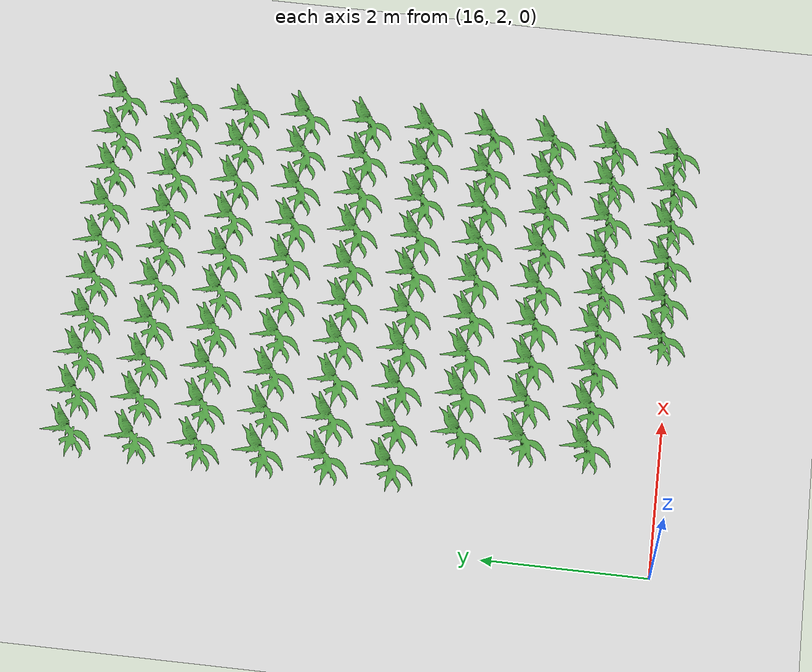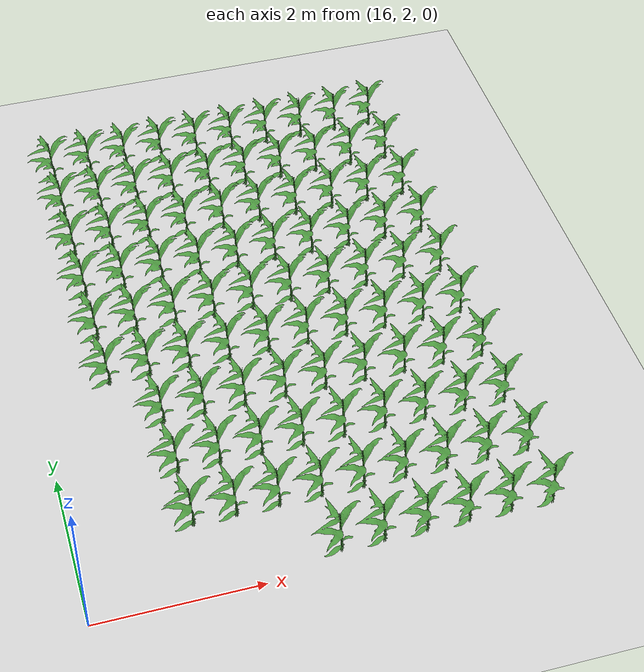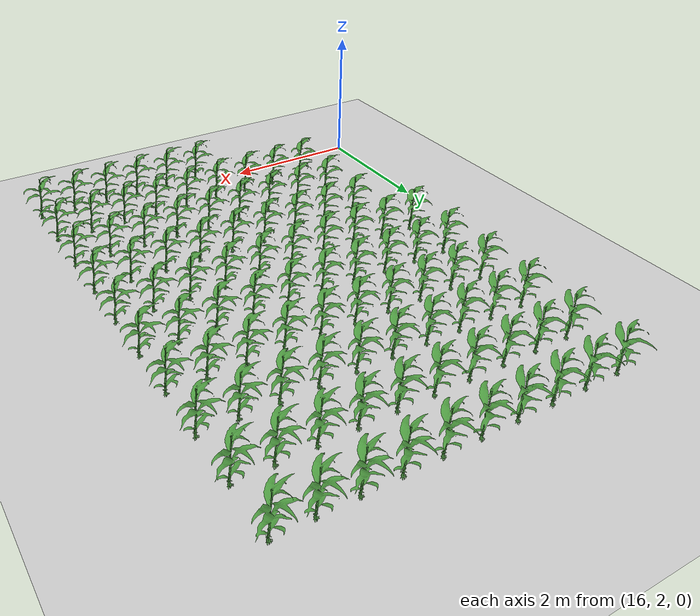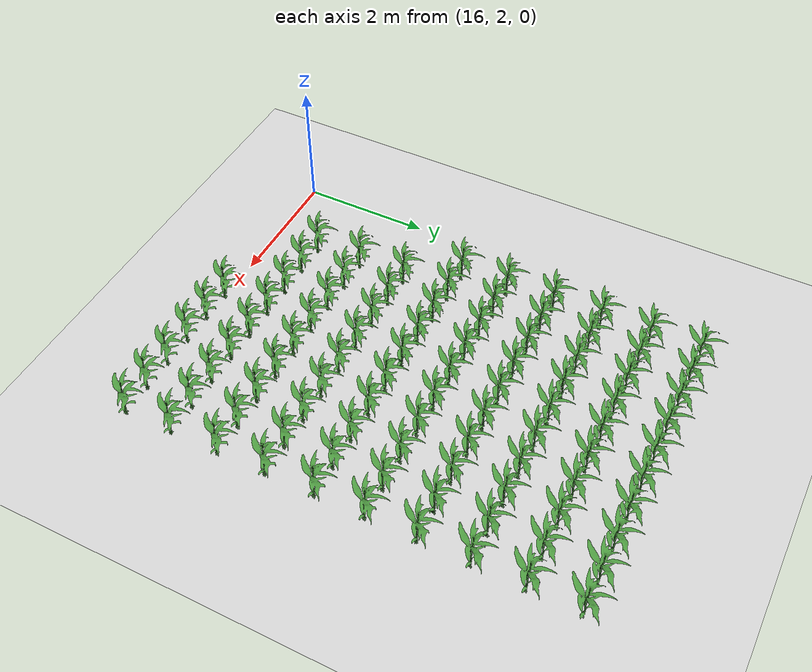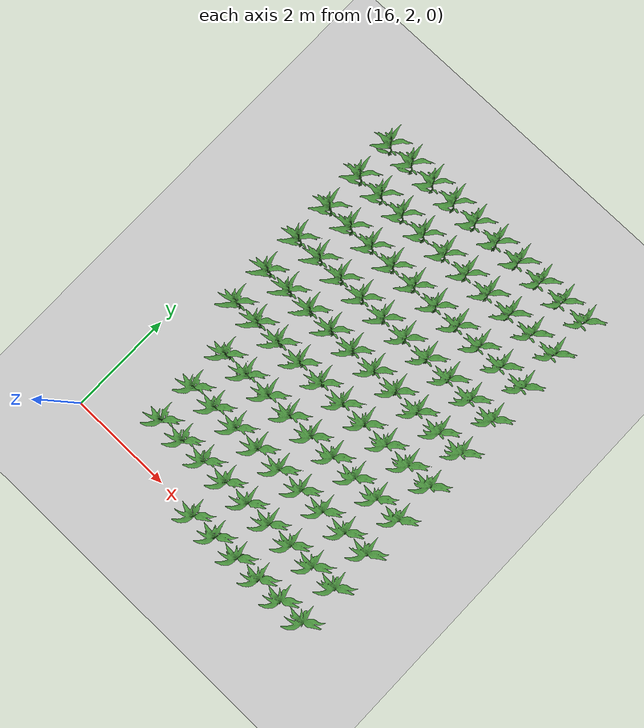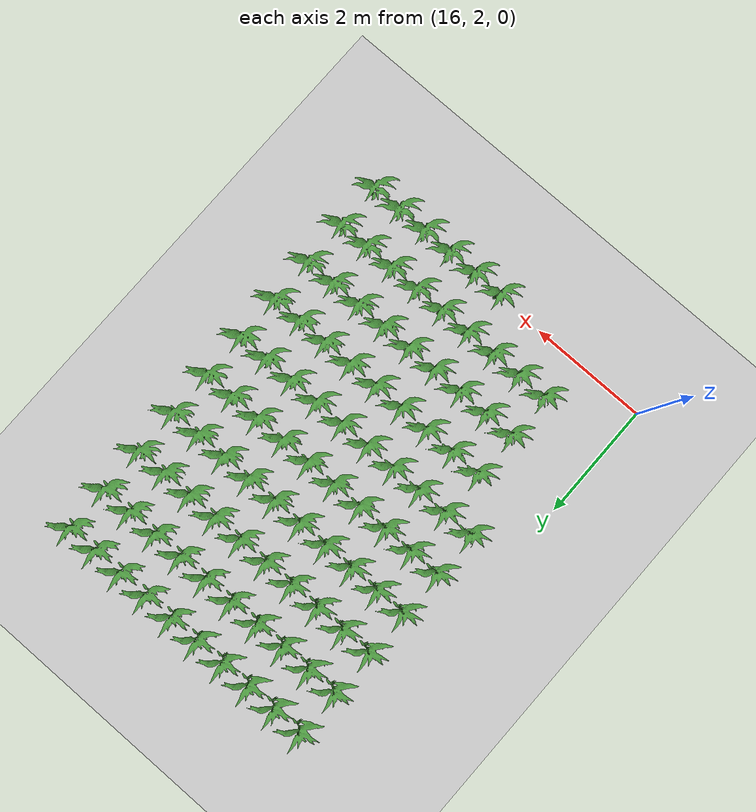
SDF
<sdf version="1.7">
 <world name="default">
  <model name="ground_plane">
   <static>1</static>
   <link name="link">
    <collision name="collision">
     <geometry><plane><normal>0 0 1</normal><size>100 100</size></plane></geometry>
     <surface>
      <contact><collide_bitmask>65535</collide_bitmask></contact>
      <friction><ode><mu>100</mu><mu2>50</mu2></ode></friction>
     </surface>
    </collision>
    <visual name="visual">
     <cast_shadows>0</cast_shadows>
     <geometry><plane><normal>0 0 1</normal><size>100 100</size></plane></geometry>
     <material>
      <script><uri>file://media/materials/scripts/gazebo.material</uri><name>Gazebo/Grey</name></script>
     </material>
    </visual>
   </link>
  </model>
  <model name="bush_1_nc_194">
   <static>1</static>
   <link name="link">
    <visual name="visual">
     <geometry>
      <mesh><uri>model://corn_stalk/meshes/corn_1.obj</uri><scale>0.002 0.002 0.001</scale></mesh>
     </geometry>
     <material>
      <script><uri>file://media/materials/scripts/gazebo.material</uri><name>Gazebo/Grass</name></script>
     </material>
    </visual>
   </link>
   <pose>17.0 3.81 0.171977 0 -0 0</pose>
  </model>
  <model name="bush_1_nc_195">
   <static>1</static>
   <link name="link">
    <visual name="visual">
     <geometry>
      <mesh><uri>model://corn_stalk/meshes/corn_1.obj</uri><scale>0.002 0.002 0.001</scale></mesh>
     </geometry>
     <material>
      <script><uri>file://media/materials/scripts/gazebo.material</uri><name>Gazebo/Grass</name></script>
     </material>
    </visual>
   </link>
   <pose>17.5 3.81 0.171977 0 -0 0</pose>
  </model>
  <model name="bush_1_nc_196">
   <static>1</static>
   <link name="link">
    <visual name="visual">
     <geometry>
      <mesh><uri>model://corn_stalk/meshes/corn_1.obj</uri><scale>0.002 0.002 0.001</scale></mesh>
     </geometry>
     <material>
      <script><uri>file://media/materials/scripts/gazebo.material</uri><name>Gazebo/Grass</name></script>
     </material>
    </visual>
   </link>
   <pose>18.0 3.81 0.171977 0 -0 0</pose>
  </model>
  <model name="bush_1_nc_197">
   <static>1</static>
   <link name="link">
    <visual name="visual">
     <geometry>
      <mesh><uri>model://corn_stalk/meshes/corn_1.obj</uri><scale>0.002 0.002 0.001</scale></mesh>
     </geometry>
     <material>
      <script><uri>file://media/materials/scripts/gazebo.material</uri><name>Gazebo/Grass</name></script>
     </material>
    </visual>
   </link>
   <pose>18.5 3.81 0.171977 0 -0 0</pose>
  </model>
  <model name="bush_1_nc_198">
   <static>1</static>
   <link name="link">
    <visual name="visual">
     <geometry>
      <mesh><uri>model://corn_stalk/meshes/corn_1.obj</uri><scale>0.002 0.002 0.001</scale></mesh>
     </geometry>
     <material>
      <script><uri>file://media/materials/scripts/gazebo.material</uri><name>Gazebo/Grass</name></script>
     </material>
    </visual>
   </link>
   <pose>19.0 3.81 0.171977 0 -0 0</pose>
  </model>
  <model name="bush_1_nc_199">
   <static>1</static>
   <link name="link">
    <visual name="visual">
     <geometry>
      <mesh><uri>model://corn_stalk/meshes/corn_1.obj</uri><scale>0.002 0.002 0.001</scale></mesh>
     </geometry>
     <material>
      <script><uri>file://media/materials/scripts/gazebo.material</uri><name>Gazebo/Grass</name></script>
     </material>
    </visual>
   </link>
   <pose>19.5 3.81 0.171977 0 -0 0</pose>
  </model>
  <model name="bush_1_nc_231">
   <static>1</static>
   <link name="link">
    <visual name="visual">
     <geometry>
      <mesh><uri>model://corn_stalk/meshes/corn_1.obj</uri><scale>0.002 0.002 0.001</scale></mesh>
     </geometry>
     <material>
      <script><uri>file://media/materials/scripts/gazebo.material</uri><name>Gazebo/Grass</name></script>
     </material>
    </visual>
   </link>
   <pose>15.5 4.572 0.171977 0 -0 0</pose>
  </model>
  <model name="bush_1_nc_232">
   <static>1</static>
   <link name="link">
    <visual name="visual">
     <geometry>
      <mesh><uri>model://corn_stalk/meshes/corn_1.obj</uri><scale>0.002 0.002 0.001</scale></mesh>
     </geometry>
     <material>
      <script><uri>file://media/materials/scripts/gazebo.material</uri><name>Gazebo/Grass</name></script>
     </material>
    </visual>
   </link>
   <pose>16.0 4.572 0.171977 0 -0 0</pose>
  </model>
  <model name="bush_1_nc_233">
   <static>1</static>
   <link name="link">
    <visual name="visual">
     <geometry>
      <mesh><uri>model://corn_stalk/meshes/corn_1.obj</uri><scale>0.002 0.002 0.001</scale></mesh>
     </geometry>
     <material>
      <script><uri>file://media/materials/scripts/gazebo.material</uri><name>Gazebo/Grass</name></script>
     </material>
    </visual>
   </link>
   <pose>16.5 4.572 0.171977 0 -0 0</pose>
  </model>
  <model name="bush_1_nc_234">
   <static>1</static>
   <link name="link">
    <visual name="visual">
     <geometry>
      <mesh><uri>model://corn_stalk/meshes/corn_1.obj</uri><scale>0.002 0.002 0.001</scale></mesh>
     </geometry>
     <material>
      <script><uri>file://media/materials/scripts/gazebo.material</uri><name>Gazebo/Grass</name></script>
     </material>
    </visual>
   </link>
   <pose>17.0 4.572 0.171977 0 -0 0</pose>
  </model>
  <model name="bush_1_nc_235">
   <static>1</static>
   <link name="link">
    <visual name="visual">
     <geometry>
      <mesh><uri>model://corn_stalk/meshes/corn_1.obj</uri><scale>0.002 0.002 0.001</scale></mesh>
     </geometry>
     <material>
      <script><uri>file://media/materials/scripts/gazebo.material</uri><name>Gazebo/Grass</name></script>
     </material>
    </visual>
   </link>
   <pose>17.5 4.572 0.171977 0 -0 0</pose>
  </model>
  <model name="bush_1_nc_236">
   <static>1</static>
   <link name="link">
    <visual name="visual">
     <geometry>
      <mesh><uri>model://corn_stalk/meshes/corn_1.obj</uri><scale>0.002 0.002 0.001</scale></mesh>
     </geometry>
     <material>
      <script><uri>file://media/materials/scripts/gazebo.material</uri><name>Gazebo/Grass</name></script>
     </material>
    </visual>
   </link>
   <pose>18.0 4.572 0.171977 0 -0 0</pose>
  </model>
  <model name="bush_1_nc_237">
   <static>1</static>
   <link name="link">
    <visual name="visual">
     <geometry>
      <mesh><uri>model://corn_stalk/meshes/corn_1.obj</uri><scale>0.002 0.002 0.001</scale></mesh>
     </geometry>
     <material>
      <script><uri>file://media/materials/scripts/gazebo.material</uri><name>Gazebo/Grass</name></script>
     </material>
    </visual>
   </link>
   <pose>18.5 4.572 0.171977 0 -0 0</pose>
  </model>
  <model name="bush_1_nc_238">
   <static>1</static>
   <link name="link">
    <visual name="visual">
     <geometry>
      <mesh><uri>model://corn_stalk/meshes/corn_1.obj</uri><scale>0.002 0.002 0.001</scale></mesh>
     </geometry>
     <material>
      <script><uri>file://media/materials/scripts/gazebo.material</uri><name>Gazebo/Grass</name></script>
     </material>
    </visual>
   </link>
   <pose>19.0 4.572 0.171977 0 -0 0</pose>
  </model>
  <model name="bush_1_nc_239">
   <static>1</static>
   <link name="link">
    <visual name="visual">
     <geometry>
      <mesh><uri>model://corn_stalk/meshes/corn_1.obj</uri><scale>0.002 0.002 0.001</scale></mesh>
     </geometry>
     <material>
      <script><uri>file://media/materials/scripts/gazebo.material</uri><name>Gazebo/Grass</name></script>
     </material>
    </visual>
   </link>
   <pose>19.5 4.572 0.171977 0 -0 0</pose>
  </model>
  <model name="bush_1_nc_271">
   <static>1</static>
   <link name="link">
    <visual name="visual">
     <geometry>
      <mesh><uri>model://corn_stalk/meshes/corn_1.obj</uri><scale>0.002 0.002 0.001</scale></mesh>
     </geometry>
     <material>
      <script><uri>file://media/materials/scripts/gazebo.material</uri><name>Gazebo/Grass</name></script>
     </material>
    </visual>
   </link>
   <pose>15.5 5.334 0.171977 0 -0 0</pose>
  </model>
  <model name="bush_1_nc_272">
   <static>1</static>
   <link name="link">
    <visual name="visual">
     <geometry>
      <mesh><uri>model://corn_stalk/meshes/corn_1.obj</uri><scale>0.002 0.002 0.001</scale></mesh>
     </geometry>
     <material>
      <script><uri>file://media/materials/scripts/gazebo.material</uri><name>Gazebo/Grass</name></script>
     </material>
    </visual>
   </link>
   <pose>16.0 5.334 0.171977 0 -0 0</pose>
  </model>
  <model name="bush_1_nc_273">
   <static>1</static>
   <link name="link">
    <visual name="visual">
     <geometry>
      <mesh><uri>model://corn_stalk/meshes/corn_1.obj</uri><scale>0.002 0.002 0.001</scale></mesh>
     </geometry>
     <material>
      <script><uri>file://media/materials/scripts/gazebo.material</uri><name>Gazebo/Grass</name></script>
     </material>
    </visual>
   </link>
   <pose>16.5 5.334 0.171977 0 -0 0</pose>
  </model>
  <model name="bush_1_nc_274">
   <static>1</static>
   <link name="link">
    <visual name="visual">
     <geometry>
      <mesh><uri>model://corn_stalk/meshes/corn_1.obj</uri><scale>0.002 0.002 0.001</scale></mesh>
     </geometry>
     <material>
      <script><uri>file://media/materials/scripts/gazebo.material</uri><name>Gazebo/Grass</name></script>
     </material>
    </visual>
   </link>
   <pose>17.0 5.334 0.171977 0 -0 0</pose>
  </model>
  <model name="bush_1_nc_275">
   <static>1</static>
   <link name="link">
    <visual name="visual">
     <geometry>
      <mesh><uri>model://corn_stalk/meshes/corn_1.obj</uri><scale>0.002 0.002 0.001</scale></mesh>
     </geometry>
     <material>
      <script><uri>file://media/materials/scripts/gazebo.material</uri><name>Gazebo/Grass</name></script>
     </material>
    </visual>
   </link>
   <pose>17.5 5.334 0.171977 0 -0 0</pose>
  </model>
  <model name="bush_1_nc_276">
   <static>1</static>
   <link name="link">
    <visual name="visual">
     <geometry>
      <mesh><uri>model://corn_stalk/meshes/corn_1.obj</uri><scale>0.002 0.002 0.001</scale></mesh>
     </geometry>
     <material>
      <script><uri>file://media/materials/scripts/gazebo.material</uri><name>Gazebo/Grass</name></script>
     </material>
    </visual>
   </link>
   <pose>18.0 5.334 0.171977 0 -0 0</pose>
  </model>
  <model name="bush_1_nc_277">
   <static>1</static>
   <link name="link">
    <visual name="visual">
     <geometry>
      <mesh><uri>model://corn_stalk/meshes/corn_1.obj</uri><scale>0.002 0.002 0.001</scale></mesh>
     </geometry>
     <material>
      <script><uri>file://media/materials/scripts/gazebo.material</uri><name>Gazebo/Grass</name></script>
     </material>
    </visual>
   </link>
   <pose>18.5 5.334 0.171977 0 -0 0</pose>
  </model>
  <model name="bush_1_nc_278">
   <static>1</static>
   <link name="link">
    <visual name="visual">
     <geometry>
      <mesh><uri>model://corn_stalk/meshes/corn_1.obj</uri><scale>0.002 0.002 0.001</scale></mesh>
     </geometry>
     <material>
      <script><uri>file://media/materials/scripts/gazebo.material</uri><name>Gazebo/Grass</name></script>
     </material>
    </visual>
   </link>
   <pose>19.0 5.334 0.171977 0 -0 0</pose>
  </model>
  <model name="bush_1_nc_279">
   <static>1</static>
   <link name="link">
    <visual name="visual">
     <geometry>
      <mesh><uri>model://corn_stalk/meshes/corn_1.obj</uri><scale>0.002 0.002 0.001</scale></mesh>
     </geometry>
     <material>
      <script><uri>file://media/materials/scripts/gazebo.material</uri><name>Gazebo/Grass</name></script>
     </material>
    </visual>
   </link>
   <pose>19.5 5.334 0.171977 0 -0 0</pose>
  </model>
  <model name="bush_1_nc_311">
   <static>1</static>
   <link name="link">
    <visual name="visual">
     <geometry>
      <mesh><uri>model://corn_stalk/meshes/corn_1.obj</uri><scale>0.002 0.002 0.001</scale></mesh>
     </geometry>
     <material>
      <script><uri>file://media/materials/scripts/gazebo.material</uri><name>Gazebo/Grass</name></script>
     </material>
    </visual>
   </link>
   <pose>15.5 6.096 0.171977 0 -0 0</pose>
  </model>
  <model name="bush_1_nc_312">
   <static>1</static>
   <link name="link">
    <visual name="visual">
     <geometry>
      <mesh><uri>model://corn_stalk/meshes/corn_1.obj</uri><scale>0.002 0.002 0.001</scale></mesh>
     </geometry>
     <material>
      <script><uri>file://media/materials/scripts/gazebo.material</uri><name>Gazebo/Grass</name></script>
     </material>
    </visual>
   </link>
   <pose>16.0 6.096 0.171977 0 -0 0</pose>
  </model>
  <model name="bush_1_nc_313">
   <static>1</static>
   <link name="link">
    <visual name="visual">
     <geometry>
      <mesh><uri>model://corn_stalk/meshes/corn_1.obj</uri><scale>0.002 0.002 0.001</scale></mesh>
     </geometry>
     <material>
      <script><uri>file://media/materials/scripts/gazebo.material</uri><name>Gazebo/Grass</name></script>
     </material>
    </visual>
   </link>
   <pose>16.5 6.096 0.171977 0 -0 0</pose>
  </model>
  <model name="bush_1_nc_314">
   <static>1</static>
   <link name="link">
    <visual name="visual">
     <geometry>
      <mesh><uri>model://corn_stalk/meshes/corn_1.obj</uri><scale>0.002 0.002 0.001</scale></mesh>
     </geometry>
     <material>
      <script><uri>file://media/materials/scripts/gazebo.material</uri><name>Gazebo/Grass</name></script>
     </material>
    </visual>
   </link>
   <pose>17.0 6.096 0.171977 0 -0 0</pose>
  </model>
  <model name="bush_1_nc_315">
   <static>1</static>
   <link name="link">
    <visual name="visual">
     <geometry>
      <mesh><uri>model://corn_stalk/meshes/corn_1.obj</uri><scale>0.002 0.002 0.001</scale></mesh>
     </geometry>
     <material>
      <script><uri>file://media/materials/scripts/gazebo.material</uri><name>Gazebo/Grass</name></script>
     </material>
    </visual>
   </link>
   <pose>17.5 6.096 0.171977 0 -0 0</pose>
  </model>
  <model name="bush_1_nc_316">
   <static>1</static>
   <link name="link">
    <visual name="visual">
     <geometry>
      <mesh><uri>model://corn_stalk/meshes/corn_1.obj</uri><scale>0.002 0.002 0.001</scale></mesh>
     </geometry>
     <material>
      <script><uri>file://media/materials/scripts/gazebo.material</uri><name>Gazebo/Grass</name></script>
     </material>
    </visual>
   </link>
   <pose>18.0 6.096 0.171977 0 -0 0</pose>
  </model>
  <model name="bush_1_nc_317">
   <static>1</static>
   <link name="link">
    <visual name="visual">
     <geometry>
      <mesh><uri>model://corn_stalk/meshes/corn_1.obj</uri><scale>0.002 0.002 0.001</scale></mesh>
     </geometry>
     <material>
      <script><uri>file://media/materials/scripts/gazebo.material</uri><name>Gazebo/Grass</name></script>
     </material>
    </visual>
   </link>
   <pose>18.5 6.096 0.171977 0 -0 0</pose>
  </model>
  <model name="bush_1_nc_318">
   <static>1</static>
   <link name="link">
    <visual name="visual">
     <geometry>
      <mesh><uri>model://corn_stalk/meshes/corn_1.obj</uri><scale>0.002 0.002 0.001</scale></mesh>
     </geometry>
     <material>
      <script><uri>file://media/materials/scripts/gazebo.material</uri><name>Gazebo/Grass</name></script>
     </material>
    </visual>
   </link>
   <pose>19.0 6.096 0.171977 0 -0 0</pose>
  </model>
  <model name="bush_1_nc_319">
   <static>1</static>
   <link name="link">
    <visual name="visual">
     <geometry>
      <mesh><uri>model://corn_stalk/meshes/corn_1.obj</uri><scale>0.002 0.002 0.001</scale></mesh>
     </geometry>
     <material>
      <script><uri>file://media/materials/scripts/gazebo.material</uri><name>Gazebo/Grass</name></script>
     </material>
    </visual>
   </link>
   <pose>19.5 6.096 0.171977 0 -0 0</pose>
  </model>
  <model name="bush_1_nc_350">
   <static>1</static>
   <link name="link">
    <visual name="visual">
     <geometry>
      <mesh><uri>model://corn_stalk/meshes/corn_1.obj</uri><scale>0.002 0.002 0.001</scale></mesh>
     </geometry>
     <material>
      <script><uri>file://media/materials/scripts/gazebo.material</uri><name>Gazebo/Grass</name></script>
     </material>
    </visual>
   </link>
   <pose>15.0 6.8580000000000005 0.171977 0 -0 0</pose>
  </model>
  <model name="bush_1_nc_351">
   <static>1</static>
   <link name="link">
    <visual name="visual">
     <geometry>
      <mesh><uri>model://corn_stalk/meshes/corn_1.obj</uri><scale>0.002 0.002 0.001</scale></mesh>
     </geometry>
     <material>
      <script><uri>file://media/materials/scripts/gazebo.material</uri><name>Gazebo/Grass</name></script>
     </material>
    </visual>
   </link>
   <pose>15.5 6.8580000000000005 0.171977 0 -0 0</pose>
  </model>
  <model name="bush_1_nc_352">
   <static>1</static>
   <link name="link">
    <visual name="visual">
     <geometry>
      <mesh><uri>model://corn_stalk/meshes/corn_1.obj</uri><scale>0.002 0.002 0.001</scale></mesh>
     </geometry>
     <material>
      <script><uri>file://media/materials/scripts/gazebo.material</uri><name>Gazebo/Grass</name></script>
     </material>
    </visual>
   </link>
   <pose>16.0 6.8580000000000005 0.171977 0 -0 0</pose>
  </model>
  <model name="bush_1_nc_353">
   <static>1</static>
   <link name="link">
    <visual name="visual">
     <geometry>
      <mesh><uri>model://corn_stalk/meshes/corn_1.obj</uri><scale>0.002 0.002 0.001</scale></mesh>
     </geometry>
     <material>
      <script><uri>file://media/materials/scripts/gazebo.material</uri><name>Gazebo/Grass</name></script>
     </material>
    </visual>
   </link>
   <pose>16.5 6.8580000000000005 0.171977 0 -0 0</pose>
  </model>
  <model name="bush_1_nc_354">
   <static>1</static>
   <link name="link">
    <visual name="visual">
     <geometry>
      <mesh><uri>model://corn_stalk/meshes/corn_1.obj</uri><scale>0.002 0.002 0.001</scale></mesh>
     </geometry>
     <material>
      <script><uri>file://media/materials/scripts/gazebo.material</uri><name>Gazebo/Grass</name></script>
     </material>
    </visual>
   </link>
   <pose>17.0 6.8580000000000005 0.171977 0 -0 0</pose>
  </model>
  <model name="bush_1_nc_355">
   <static>1</static>
   <link name="link">
    <visual name="visual">
     <geometry>
      <mesh><uri>model://corn_stalk/meshes/corn_1.obj</uri><scale>0.002 0.002 0.001</scale></mesh>
     </geometry>
     <material>
      <script><uri>file://media/materials/scripts/gazebo.material</uri><name>Gazebo/Grass</name></script>
     </material>
    </visual>
   </link>
   <pose>17.5 6.8580000000000005 0.171977 0 -0 0</pose>
  </model>
  <model name="bush_1_nc_356">
   <static>1</static>
   <link name="link">
    <visual name="visual">
     <geometry>
      <mesh><uri>model://corn_stalk/meshes/corn_1.obj</uri><scale>0.002 0.002 0.001</scale></mesh>
     </geometry>
     <material>
      <script><uri>file://media/materials/scripts/gazebo.material</uri><name>Gazebo/Grass</name></script>
     </material>
    </visual>
   </link>
   <pose>18.0 6.8580000000000005 0.171977 0 -0 0</pose>
  </model>
  <model name="bush_1_nc_357">
   <static>1</static>
   <link name="link">
    <visual name="visual">
     <geometry>
      <mesh><uri>model://corn_stalk/meshes/corn_1.obj</uri><scale>0.002 0.002 0.001</scale></mesh>
     </geometry>
     <material>
      <script><uri>file://media/materials/scripts/gazebo.material</uri><name>Gazebo/Grass</name></script>
     </material>
    </visual>
   </link>
   <pose>18.5 6.8580000000000005 0.171977 0 -0 0</pose>
  </model>
  <model name="bush_1_nc_358">
   <static>1</static>
   <link name="link">
    <visual name="visual">
     <geometry>
      <mesh><uri>model://corn_stalk/meshes/corn_1.obj</uri><scale>0.002 0.002 0.001</scale></mesh>
     </geometry>
     <material>
      <script><uri>file://media/materials/scripts/gazebo.material</uri><name>Gazebo/Grass</name></script>
     </material>
    </visual>
   </link>
   <pose>19.0 6.8580000000000005 0.171977 0 -0 0</pose>
  </model>
  <model name="bush_1_nc_359">
   <static>1</static>
   <link name="link">
    <visual name="visual">
     <geometry>
      <mesh><uri>model://corn_stalk/meshes/corn_1.obj</uri><scale>0.002 0.002 0.001</scale></mesh>
     </geometry>
     <material>
      <script><uri>file://media/materials/scripts/gazebo.material</uri><name>Gazebo/Grass</name></script>
     </material>
    </visual>
   </link>
   <pose>19.5 6.8580000000000005 0.171977 0 -0 0</pose>
  </model>
  <model name="bush_1_nc_390">
   <static>1</static>
   <link name="link">
    <visual name="visual">
     <geometry>
      <mesh><uri>model://corn_stalk/meshes/corn_1.obj</uri><scale>0.002 0.002 0.001</scale></mesh>
     </geometry>
     <material>
      <script><uri>file://media/materials/scripts/gazebo.material</uri><name>Gazebo/Grass</name></script>
     </material>
    </visual>
   </link>
   <pose>15.0 7.62 0.171977 0 -0 0</pose>
  </model>
  <model name="bush_1_nc_391">
   <static>1</static>
   <link name="link">
    <visual name="visual">
     <geometry>
      <mesh><uri>model://corn_stalk/meshes/corn_1.obj</uri><scale>0.002 0.002 0.001</scale></mesh>
     </geometry>
     <material>
      <script><uri>file://media/materials/scripts/gazebo.material</uri><name>Gazebo/Grass</name></script>
     </material>
    </visual>
   </link>
   <pose>15.5 7.62 0.171977 0 -0 0</pose>
  </model>
  <model name="bush_1_nc_392">
   <static>1</static>
   <link name="link">
    <visual name="visual">
     <geometry>
      <mesh><uri>model://corn_stalk/meshes/corn_1.obj</uri><scale>0.002 0.002 0.001</scale></mesh>
     </geometry>
     <material>
      <script><uri>file://media/materials/scripts/gazebo.material</uri><name>Gazebo/Grass</name></script>
     </material>
    </visual>
   </link>
   <pose>16.0 7.62 0.171977 0 -0 0</pose>
  </model>
  <model name="bush_1_nc_393">
   <static>1</static>
   <link name="link">
    <visual name="visual">
     <geometry>
      <mesh><uri>model://corn_stalk/meshes/corn_1.obj</uri><scale>0.002 0.002 0.001</scale></mesh>
     </geometry>
     <material>
      <script><uri>file://media/materials/scripts/gazebo.material</uri><name>Gazebo/Grass</name></script>
     </material>
    </visual>
   </link>
   <pose>16.5 7.62 0.171977 0 -0 0</pose>
  </model>
  <model name="bush_1_nc_394">
   <static>1</static>
   <link name="link">
    <visual name="visual">
     <geometry>
      <mesh><uri>model://corn_stalk/meshes/corn_1.obj</uri><scale>0.002 0.002 0.001</scale></mesh>
     </geometry>
     <material>
      <script><uri>file://media/materials/scripts/gazebo.material</uri><name>Gazebo/Grass</name></script>
     </material>
    </visual>
   </link>
   <pose>17.0 7.62 0.171977 0 -0 0</pose>
  </model>
  <model name="bush_1_nc_395">
   <static>1</static>
   <link name="link">
    <visual name="visual">
     <geometry>
      <mesh><uri>model://corn_stalk/meshes/corn_1.obj</uri><scale>0.002 0.002 0.001</scale></mesh>
     </geometry>
     <material>
      <script><uri>file://media/materials/scripts/gazebo.material</uri><name>Gazebo/Grass</name></script>
     </material>
    </visual>
   </link>
   <pose>17.5 7.62 0.171977 0 -0 0</pose>
  </model>
  <model name="bush_1_nc_396">
   <static>1</static>
   <link name="link">
    <visual name="visual">
     <geometry>
      <mesh><uri>model://corn_stalk/meshes/corn_1.obj</uri><scale>0.002 0.002 0.001</scale></mesh>
     </geometry>
     <material>
      <script><uri>file://media/materials/scripts/gazebo.material</uri><name>Gazebo/Grass</name></script>
     </material>
    </visual>
   </link>
   <pose>18.0 7.62 0.171977 0 -0 0</pose>
  </model>
  <model name="bush_1_nc_397">
   <static>1</static>
   <link name="link">
    <visual name="visual">
     <geometry>
      <mesh><uri>model://corn_stalk/meshes/corn_1.obj</uri><scale>0.002 0.002 0.001</scale></mesh>
     </geometry>
     <material>
      <script><uri>file://media/materials/scripts/gazebo.material</uri><name>Gazebo/Grass</name></script>
     </material>
    </visual>
   </link>
   <pose>18.5 7.62 0.171977 0 -0 0</pose>
  </model>
  <model name="bush_1_nc_398">
   <static>1</static>
   <link name="link">
    <visual name="visual">
     <geometry>
      <mesh><uri>model://corn_stalk/meshes/corn_1.obj</uri><scale>0.002 0.002 0.001</scale></mesh>
     </geometry>
     <material>
      <script><uri>file://media/materials/scripts/gazebo.material</uri><name>Gazebo/Grass</name></script>
     </material>
    </visual>
   </link>
   <pose>19.0 7.62 0.171977 0 -0 0</pose>
  </model>
  <model name="bush_1_nc_399">
   <static>1</static>
   <link name="link">
    <visual name="visual">
     <geometry>
      <mesh><uri>model://corn_stalk/meshes/corn_1.obj</uri><scale>0.002 0.002 0.001</scale></mesh>
     </geometry>
     <material>
      <script><uri>file://media/materials/scripts/gazebo.material</uri><name>Gazebo/Grass</name></script>
     </material>
    </visual>
   </link>
   <pose>19.5 7.62 0.171977 0 -0 0</pose>
  </model>
  <model name="bush_1_nc_430">
   <static>1</static>
   <link name="link">
    <visual name="visual">
     <geometry>
      <mesh><uri>model://corn_stalk/meshes/corn_1.obj</uri><scale>0.002 0.002 0.001</scale></mesh>
     </geometry>
     <material>
      <script><uri>file://media/materials/scripts/gazebo.material</uri><name>Gazebo/Grass</name></script>
     </material>
    </visual>
   </link>
   <pose>15.0 8.382 0.171977 0 -0 0</pose>
  </model>
  <model name="bush_1_nc_431">
   <static>1</static>
   <link name="link">
    <visual name="visual">
     <geometry>
      <mesh><uri>model://corn_stalk/meshes/corn_1.obj</uri><scale>0.002 0.002 0.001</scale></mesh>
     </geometry>
     <material>
      <script><uri>file://media/materials/scripts/gazebo.material</uri><name>Gazebo/Grass</name></script>
     </material>
    </visual>
   </link>
   <pose>15.5 8.382 0.171977 0 -0 0</pose>
  </model>
  <model name="bush_1_nc_432">
   <static>1</static>
   <link name="link">
    <visual name="visual">
     <geometry>
      <mesh><uri>model://corn_stalk/meshes/corn_1.obj</uri><scale>0.002 0.002 0.001</scale></mesh>
     </geometry>
     <material>
      <script><uri>file://media/materials/scripts/gazebo.material</uri><name>Gazebo/Grass</name></script>
     </material>
    </visual>
   </link>
   <pose>16.0 8.382 0.171977 0 -0 0</pose>
  </model>
  <model name="bush_1_nc_433">
   <static>1</static>
   <link name="link">
    <visual name="visual">
     <geometry>
      <mesh><uri>model://corn_stalk/meshes/corn_1.obj</uri><scale>0.002 0.002 0.001</scale></mesh>
     </geometry>
     <material>
      <script><uri>file://media/materials/scripts/gazebo.material</uri><name>Gazebo/Grass</name></script>
     </material>
    </visual>
   </link>
   <pose>16.5 8.382 0.171977 0 -0 0</pose>
  </model>
  <model name="bush_1_nc_434">
   <static>1</static>
   <link name="link">
    <visual name="visual">
     <geometry>
      <mesh><uri>model://corn_stalk/meshes/corn_1.obj</uri><scale>0.002 0.002 0.001</scale></mesh>
     </geometry>
     <material>
      <script><uri>file://media/materials/scripts/gazebo.material</uri><name>Gazebo/Grass</name></script>
     </material>
    </visual>
   </link>
   <pose>17.0 8.382 0.171977 0 -0 0</pose>
  </model>
  <model name="bush_1_nc_435">
   <static>1</static>
   <link name="link">
    <visual name="visual">
     <geometry>
      <mesh><uri>model://corn_stalk/meshes/corn_1.obj</uri><scale>0.002 0.002 0.001</scale></mesh>
     </geometry>
     <material>
      <script><uri>file://media/materials/scripts/gazebo.material</uri><name>Gazebo/Grass</name></script>
     </material>
    </visual>
   </link>
   <pose>17.5 8.382 0.171977 0 -0 0</pose>
  </model>
  <model name="bush_1_nc_436">
   <static>1</static>
   <link name="link">
    <visual name="visual">
     <geometry>
      <mesh><uri>model://corn_stalk/meshes/corn_1.obj</uri><scale>0.002 0.002 0.001</scale></mesh>
     </geometry>
     <material>
      <script><uri>file://media/materials/scripts/gazebo.material</uri><name>Gazebo/Grass</name></script>
     </material>
    </visual>
   </link>
   <pose>18.0 8.382 0.171977 0 -0 0</pose>
  </model>
  <model name="bush_1_nc_437">
   <static>1</static>
   <link name="link">
    <visual name="visual">
     <geometry>
      <mesh><uri>model://corn_stalk/meshes/corn_1.obj</uri><scale>0.002 0.002 0.001</scale></mesh>
     </geometry>
     <material>
      <script><uri>file://media/materials/scripts/gazebo.material</uri><name>Gazebo/Grass</name></script>
     </material>
    </visual>
   </link>
   <pose>18.5 8.382 0.171977 0 -0 0</pose>
  </model>
  <model name="bush_1_nc_438">
   <static>1</static>
   <link name="link">
    <visual name="visual">
     <geometry>
      <mesh><uri>model://corn_stalk/meshes/corn_1.obj</uri><scale>0.002 0.002 0.001</scale></mesh>
     </geometry>
     <material>
      <script><uri>file://media/materials/scripts/gazebo.material</uri><name>Gazebo/Grass</name></script>
     </material>
    </visual>
   </link>
   <pose>19.0 8.382 0.171977 0 -0 0</pose>
  </model>
  <model name="bush_1_nc_439">
   <static>1</static>
   <link name="link">
    <visual name="visual">
     <geometry>
      <mesh><uri>model://corn_stalk/meshes/corn_1.obj</uri><scale>0.002 0.002 0.001</scale></mesh>
     </geometry>
     <material>
      <script><uri>file://media/materials/scripts/gazebo.material</uri><name>Gazebo/Grass</name></script>
     </material>
    </visual>
   </link>
   <pose>19.5 8.382 0.171977 0 -0 0</pose>
  </model>
  <model name="bush_1_nc_470">
   <static>1</static>
   <link name="link">
    <visual name="visual">
     <geometry>
      <mesh><uri>model://corn_stalk/meshes/corn_1.obj</uri><scale>0.002 0.002 0.001</scale></mesh>
     </geometry>
     <material>
      <script><uri>file://media/materials/scripts/gazebo.material</uri><name>Gazebo/Grass</name></script>
     </material>
    </visual>
   </link>
   <pose>15.0 9.144 0.171977 0 -0 0</pose>
  </model>
  <model name="bush_1_nc_471">
   <static>1</static>
   <link name="link">
    <visual name="visual">
     <geometry>
      <mesh><uri>model://corn_stalk/meshes/corn_1.obj</uri><scale>0.002 0.002 0.001</scale></mesh>
     </geometry>
     <material>
      <script><uri>file://media/materials/scripts/gazebo.material</uri><name>Gazebo/Grass</name></script>
     </material>
    </visual>
   </link>
   <pose>15.5 9.144 0.171977 0 -0 0</pose>
  </model>
  <model name="bush_1_nc_472">
   <static>1</static>
   <link name="link">
    <visual name="visual">
     <geometry>
      <mesh><uri>model://corn_stalk/meshes/corn_1.obj</uri><scale>0.002 0.002 0.001</scale></mesh>
     </geometry>
     <material>
      <script><uri>file://media/materials/scripts/gazebo.material</uri><name>Gazebo/Grass</name></script>
     </material>
    </visual>
   </link>
   <pose>16.0 9.144 0.171977 0 -0 0</pose>
  </model>
  <model name="bush_1_nc_473">
   <static>1</static>
   <link name="link">
    <visual name="visual">
     <geometry>
      <mesh><uri>model://corn_stalk/meshes/corn_1.obj</uri><scale>0.002 0.002 0.001</scale></mesh>
     </geometry>
     <material>
      <script><uri>file://media/materials/scripts/gazebo.material</uri><name>Gazebo/Grass</name></script>
     </material>
    </visual>
   </link>
   <pose>16.5 9.144 0.171977 0 -0 0</pose>
  </model>
  <model name="bush_1_nc_474">
   <static>1</static>
   <link name="link">
    <visual name="visual">
     <geometry>
      <mesh><uri>model://corn_stalk/meshes/corn_1.obj</uri><scale>0.002 0.002 0.001</scale></mesh>
     </geometry>
     <material>
      <script><uri>file://media/materials/scripts/gazebo.material</uri><name>Gazebo/Grass</name></script>
     </material>
    </visual>
   </link>
   <pose>17.0 9.144 0.171977 0 -0 0</pose>
  </model>
  <model name="bush_1_nc_475">
   <static>1</static>
   <link name="link">
    <visual name="visual">
     <geometry>
      <mesh><uri>model://corn_stalk/meshes/corn_1.obj</uri><scale>0.002 0.002 0.001</scale></mesh>
     </geometry>
     <material>
      <script><uri>file://media/materials/scripts/gazebo.material</uri><name>Gazebo/Grass</name></script>
     </material>
    </visual>
   </link>
   <pose>17.5 9.144 0.171977 0 -0 0</pose>
  </model>
  <model name="bush_1_nc_476">
   <static>1</static>
   <link name="link">
    <visual name="visual">
     <geometry>
      <mesh><uri>model://corn_stalk/meshes/corn_1.obj</uri><scale>0.002 0.002 0.001</scale></mesh>
     </geometry>
     <material>
      <script><uri>file://media/materials/scripts/gazebo.material</uri><name>Gazebo/Grass</name></script>
     </material>
    </visual>
   </link>
   <pose>18.0 9.144 0.171977 0 -0 0</pose>
  </model>
  <model name="bush_1_nc_477">
   <static>1</static>
   <link name="link">
    <visual name="visual">
     <geometry>
      <mesh><uri>model://corn_stalk/meshes/corn_1.obj</uri><scale>0.002 0.002 0.001</scale></mesh>
     </geometry>
     <material>
      <script><uri>file://media/materials/scripts/gazebo.material</uri><name>Gazebo/Grass</name></script>
     </material>
    </visual>
   </link>
   <pose>18.5 9.144 0.171977 0 -0 0</pose>
  </model>
  <model name="bush_1_nc_478">
   <static>1</static>
   <link name="link">
    <visual name="visual">
     <geometry>
      <mesh><uri>model://corn_stalk/meshes/corn_1.obj</uri><scale>0.002 0.002 0.001</scale></mesh>
     </geometry>
     <material>
      <script><uri>file://media/materials/scripts/gazebo.material</uri><name>Gazebo/Grass</name></script>
     </material>
    </visual>
   </link>
   <pose>19.0 9.144 0.171977 0 -0 0</pose>
  </model>
  <model name="bush_1_nc_479">
   <static>1</static>
   <link name="link">
    <visual name="visual">
     <geometry>
      <mesh><uri>model://corn_stalk/meshes/corn_1.obj</uri><scale>0.002 0.002 0.001</scale></mesh>
     </geometry>
     <material>
      <script><uri>file://media/materials/scripts/gazebo.material</uri><name>Gazebo/Grass</name></script>
     </material>
    </visual>
   </link>
   <pose>19.5 9.144 0.171977 0 -0 0</pose>
  </model>
  <model name="bush_1_nc_510">
   <static>1</static>
   <link name="link">
    <visual name="visual">
     <geometry>
      <mesh><uri>model://corn_stalk/meshes/corn_1.obj</uri><scale>0.002 0.002 0.001</scale></mesh>
     </geometry>
     <material>
      <script><uri>file://media/materials/scripts/gazebo.material</uri><name>Gazebo/Grass</name></script>
     </material>
    </visual>
   </link>
   <pose>15.0 9.906 0.171977 0 -0 0</pose>
  </model>
  <model name="bush_1_nc_511">
   <static>1</static>
   <link name="link">
    <visual name="visual">
     <geometry>
      <mesh><uri>model://corn_stalk/meshes/corn_1.obj</uri><scale>0.002 0.002 0.001</scale></mesh>
     </geometry>
     <material>
      <script><uri>file://media/materials/scripts/gazebo.material</uri><name>Gazebo/Grass</name></script>
     </material>
    </visual>
   </link>
   <pose>15.5 9.906 0.171977 0 -0 0</pose>
  </model>
  <model name="bush_1_nc_512">
   <static>1</static>
   <link name="link">
    <visual name="visual">
     <geometry>
      <mesh><uri>model://corn_stalk/meshes/corn_1.obj</uri><scale>0.002 0.002 0.001</scale></mesh>
     </geometry>
     <material>
      <script><uri>file://media/materials/scripts/gazebo.material</uri><name>Gazebo/Grass</name></script>
     </material>
    </visual>
   </link>
   <pose>16.0 9.906 0.171977 0 -0 0</pose>
  </model>
  <model name="bush_1_nc_513">
   <static>1</static>
   <link name="link">
    <visual name="visual">
     <geometry>
      <mesh><uri>model://corn_stalk/meshes/corn_1.obj</uri><scale>0.002 0.002 0.001</scale></mesh>
     </geometry>
     <material>
      <script><uri>file://media/materials/scripts/gazebo.material</uri><name>Gazebo/Grass</name></script>
     </material>
    </visual>
   </link>
   <pose>16.5 9.906 0.171977 0 -0 0</pose>
  </model>
  <model name="bush_1_nc_514">
   <static>1</static>
   <link name="link">
    <visual name="visual">
     <geometry>
      <mesh><uri>model://corn_stalk/meshes/corn_1.obj</uri><scale>0.002 0.002 0.001</scale></mesh>
     </geometry>
     <material>
      <script><uri>file://media/materials/scripts/gazebo.material</uri><name>Gazebo/Grass</name></script>
     </material>
    </visual>
   </link>
   <pose>17.0 9.906 0.171977 0 -0 0</pose>
  </model>
  <model name="bush_1_nc_515">
   <static>1</static>
   <link name="link">
    <visual name="visual">
     <geometry>
      <mesh><uri>model://corn_stalk/meshes/corn_1.obj</uri><scale>0.002 0.002 0.001</scale></mesh>
     </geometry>
     <material>
      <script><uri>file://media/materials/scripts/gazebo.material</uri><name>Gazebo/Grass</name></script>
     </material>
    </visual>
   </link>
   <pose>17.5 9.906 0.171977 0 -0 0</pose>
  </model>
  <model name="bush_1_nc_516">
   <static>1</static>
   <link name="link">
    <visual name="visual">
     <geometry>
      <mesh><uri>model://corn_stalk/meshes/corn_1.obj</uri><scale>0.002 0.002 0.001</scale></mesh>
     </geometry>
     <material>
      <script><uri>file://media/materials/scripts/gazebo.material</uri><name>Gazebo/Grass</name></script>
     </material>
    </visual>
   </link>
   <pose>18.0 9.906 0.171977 0 -0 0</pose>
  </model>
  <model name="bush_1_nc_517">
   <static>1</static>
   <link name="link">
    <visual name="visual">
     <geometry>
      <mesh><uri>model://corn_stalk/meshes/corn_1.obj</uri><scale>0.002 0.002 0.001</scale></mesh>
     </geometry>
     <material>
      <script><uri>file://media/materials/scripts/gazebo.material</uri><name>Gazebo/Grass</name></script>
     </material>
    </visual>
   </link>
   <pose>18.5 9.906 0.171977 0 -0 0</pose>
  </model>
  <model name="bush_1_nc_518">
   <static>1</static>
   <link name="link">
    <visual name="visual">
     <geometry>
      <mesh><uri>model://corn_stalk/meshes/corn_1.obj</uri><scale>0.002 0.002 0.001</scale></mesh>
     </geometry>
     <material>
      <script><uri>file://media/materials/scripts/gazebo.material</uri><name>Gazebo/Grass</name></script>
     </material>
    </visual>
   </link>
   <pose>19.0 9.906 0.171977 0 -0 0</pose>
  </model>
  <model name="bush_1_nc_519">
   <static>1</static>
   <link name="link">
    <visual name="visual">
     <geometry>
      <mesh><uri>model://corn_stalk/meshes/corn_1.obj</uri><scale>0.002 0.002 0.001</scale></mesh>
     </geometry>
     <material>
      <script><uri>file://media/materials/scripts/gazebo.material</uri><name>Gazebo/Grass</name></script>
     </material>
    </visual>
   </link>
   <pose>19.5 9.906 0.171977 0 -0 0</pose>
  </model>
  <model name="bush_1_nc_550">
   <static>1</static>
   <link name="link">
    <visual name="visual">
     <geometry>
      <mesh><uri>model://corn_stalk/meshes/corn_1.obj</uri><scale>0.002 0.002 0.001</scale></mesh>
     </geometry>
     <material>
      <script><uri>file://media/materials/scripts/gazebo.material</uri><name>Gazebo/Grass</name></script>
     </material>
    </visual>
   </link>
   <pose>15.0 10.668 0.171977 0 -0 0</pose>
  </model>
  <model name="bush_1_nc_551">
   <static>1</static>
   <link name="link">
    <visual name="visual">
     <geometry>
      <mesh><uri>model://corn_stalk/meshes/corn_1.obj</uri><scale>0.002 0.002 0.001</scale></mesh>
     </geometry>
     <material>
      <script><uri>file://media/materials/scripts/gazebo.material</uri><name>Gazebo/Grass</name></script>
     </material>
    </visual>
   </link>
   <pose>15.5 10.668 0.171977 0 -0 0</pose>
  </model>
  <model name="bush_1_nc_552">
   <static>1</static>
   <link name="link">
    <visual name="visual">
     <geometry>
      <mesh><uri>model://corn_stalk/meshes/corn_1.obj</uri><scale>0.002 0.002 0.001</scale></mesh>
     </geometry>
     <material>
      <script><uri>file://media/materials/scripts/gazebo.material</uri><name>Gazebo/Grass</name></script>
     </material>
    </visual>
   </link>
   <pose>16.0 10.668 0.171977 0 -0 0</pose>
  </model>
  <model name="bush_1_nc_553">
   <static>1</static>
   <link name="link">
    <visual name="visual">
     <geometry>
      <mesh><uri>model://corn_stalk/meshes/corn_1.obj</uri><scale>0.002 0.002 0.001</scale></mesh>
     </geometry>
     <material>
      <script><uri>file://media/materials/scripts/gazebo.material</uri><name>Gazebo/Grass</name></script>
     </material>
    </visual>
   </link>
   <pose>16.5 10.668 0.171977 0 -0 0</pose>
  </model>
  <model name="bush_1_nc_554">
   <static>1</static>
   <link name="link">
    <visual name="visual">
     <geometry>
      <mesh><uri>model://corn_stalk/meshes/corn_1.obj</uri><scale>0.002 0.002 0.001</scale></mesh>
     </geometry>
     <material>
      <script><uri>file://media/materials/scripts/gazebo.material</uri><name>Gazebo/Grass</name></script>
     </material>
    </visual>
   </link>
   <pose>17.0 10.668 0.171977 0 -0 0</pose>
  </model>
  <model name="bush_1_nc_555">
   <static>1</static>
   <link name="link">
    <visual name="visual">
     <geometry>
      <mesh><uri>model://corn_stalk/meshes/corn_1.obj</uri><scale>0.002 0.002 0.001</scale></mesh>
     </geometry>
     <material>
      <script><uri>file://media/materials/scripts/gazebo.material</uri><name>Gazebo/Grass</name></script>
     </material>
    </visual>
   </link>
   <pose>17.5 10.668 0.171977 0 -0 0</pose>
  </model>
  <model name="bush_1_nc_556">
   <static>1</static>
   <link name="link">
    <visual name="visual">
     <geometry>
      <mesh><uri>model://corn_stalk/meshes/corn_1.obj</uri><scale>0.002 0.002 0.001</scale></mesh>
     </geometry>
     <material>
      <script><uri>file://media/materials/scripts/gazebo.material</uri><name>Gazebo/Grass</name></script>
     </material>
    </visual>
   </link>
   <pose>18.0 10.668 0.171977 0 -0 0</pose>
  </model>
  <model name="bush_1_nc_557">
   <static>1</static>
   <link name="link">
    <visual name="visual">
     <geometry>
      <mesh><uri>model://corn_stalk/meshes/corn_1.obj</uri><scale>0.002 0.002 0.001</scale></mesh>
     </geometry>
     <material>
      <script><uri>file://media/materials/scripts/gazebo.material</uri><name>Gazebo/Grass</name></script>
     </material>
    </visual>
   </link>
   <pose>18.5 10.668 0.171977 0 -0 0</pose>
  </model>
  <model name="bush_1_nc_558">
   <static>1</static>
   <link name="link">
    <visual name="visual">
     <geometry>
      <mesh><uri>model://corn_stalk/meshes/corn_1.obj</uri><scale>0.002 0.002 0.001</scale></mesh>
     </geometry>
     <material>
      <script><uri>file://media/materials/scripts/gazebo.material</uri><name>Gazebo/Grass</name></script>
     </material>
    </visual>
   </link>
   <pose>19.0 10.668 0.171977 0 -0 0</pose>
  </model>
  <model name="bush_1_nc_559">
   <static>1</static>
   <link name="link">
    <visual name="visual">
     <geometry>
      <mesh><uri>model://corn_stalk/meshes/corn_1.obj</uri><scale>0.002 0.002 0.001</scale></mesh>
     </geometry>
     <material>
      <script><uri>file://media/materials/scripts/gazebo.material</uri><name>Gazebo/Grass</name></script>
     </material>
    </visual>
   </link>
   <pose>19.5 10.668 0.171977 0 -0 0</pose>
  </model>
 </world>
</sdf>
